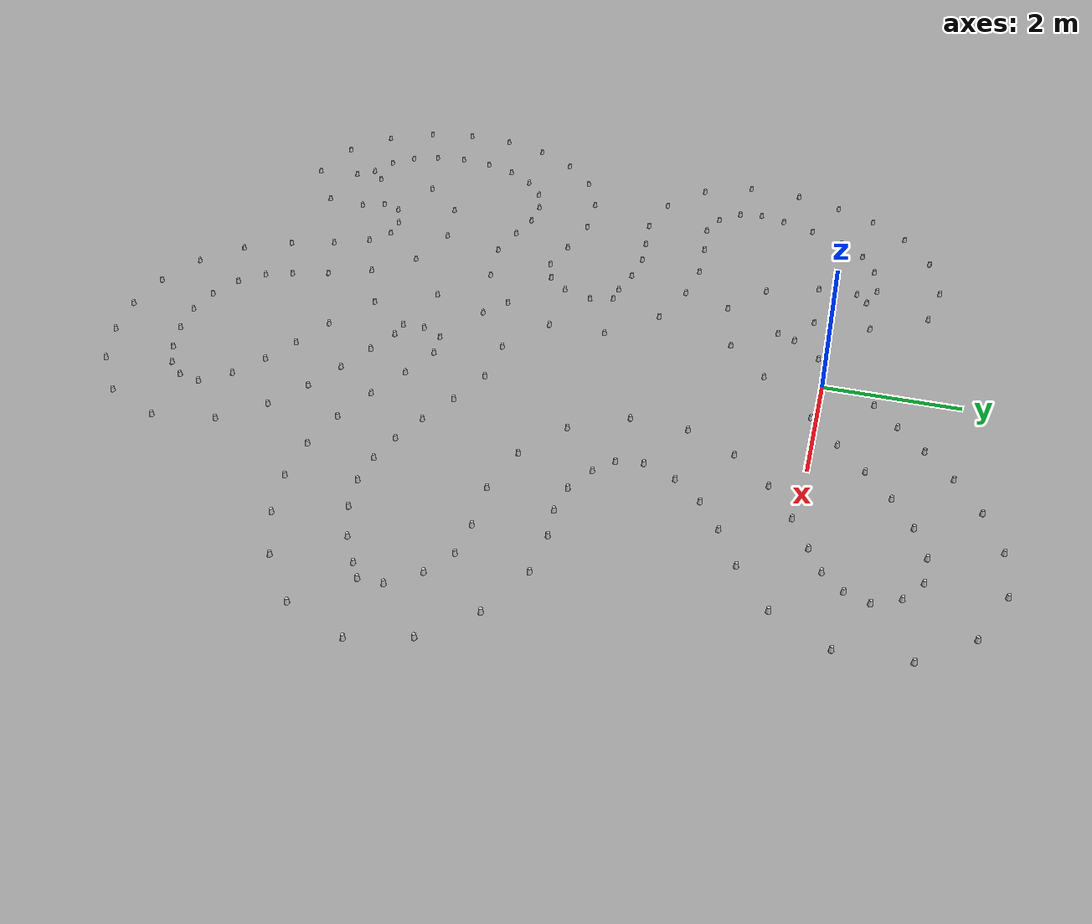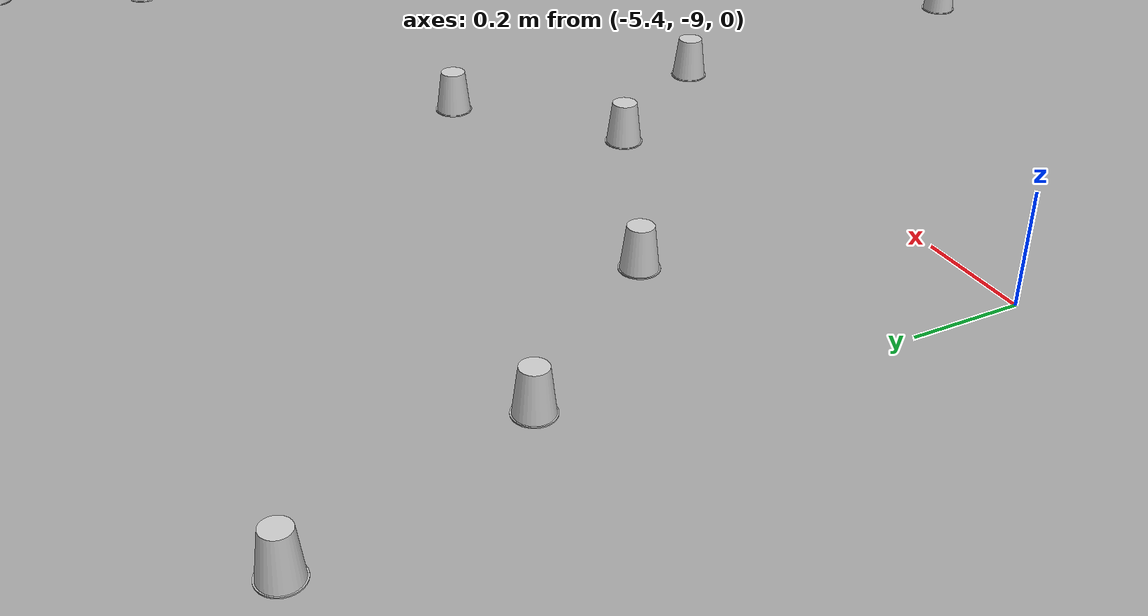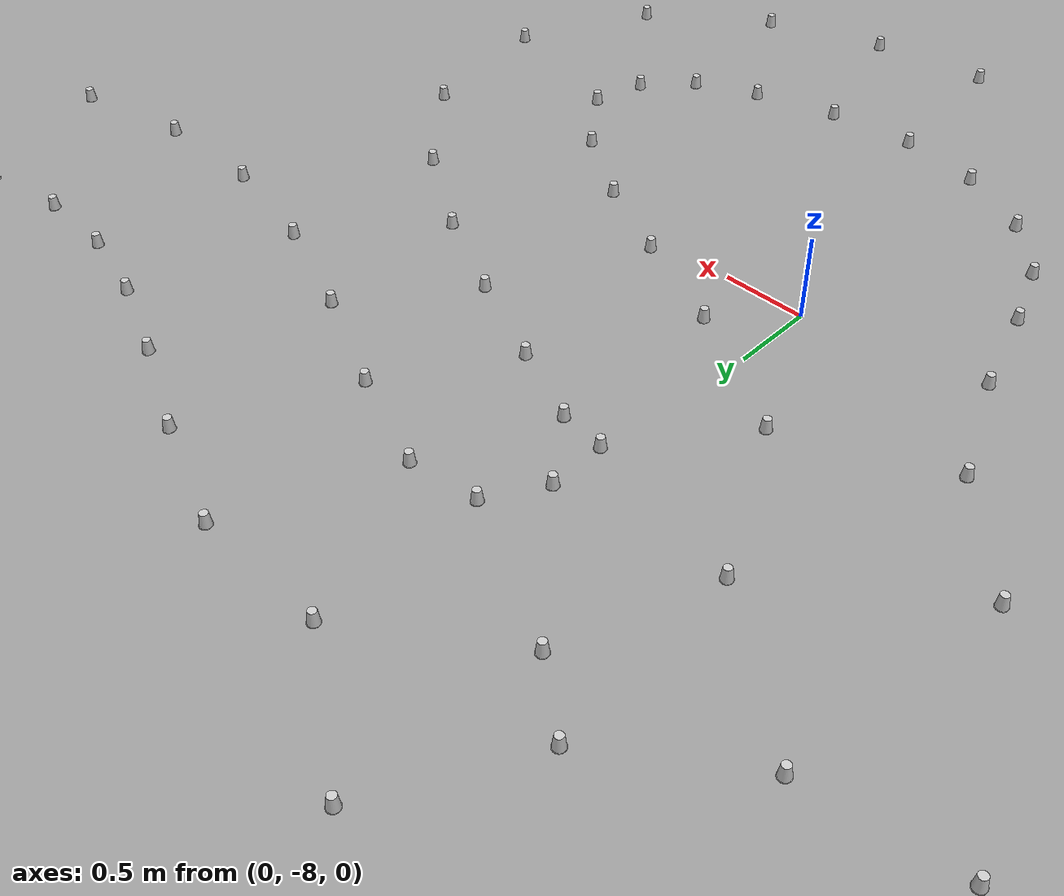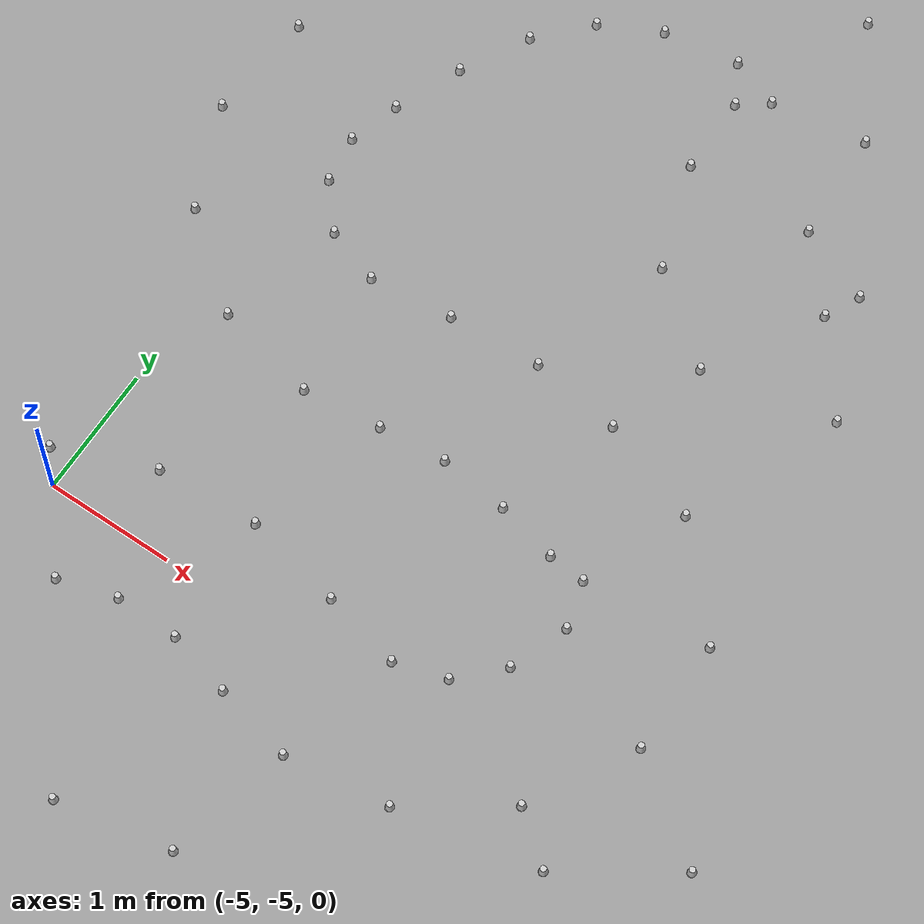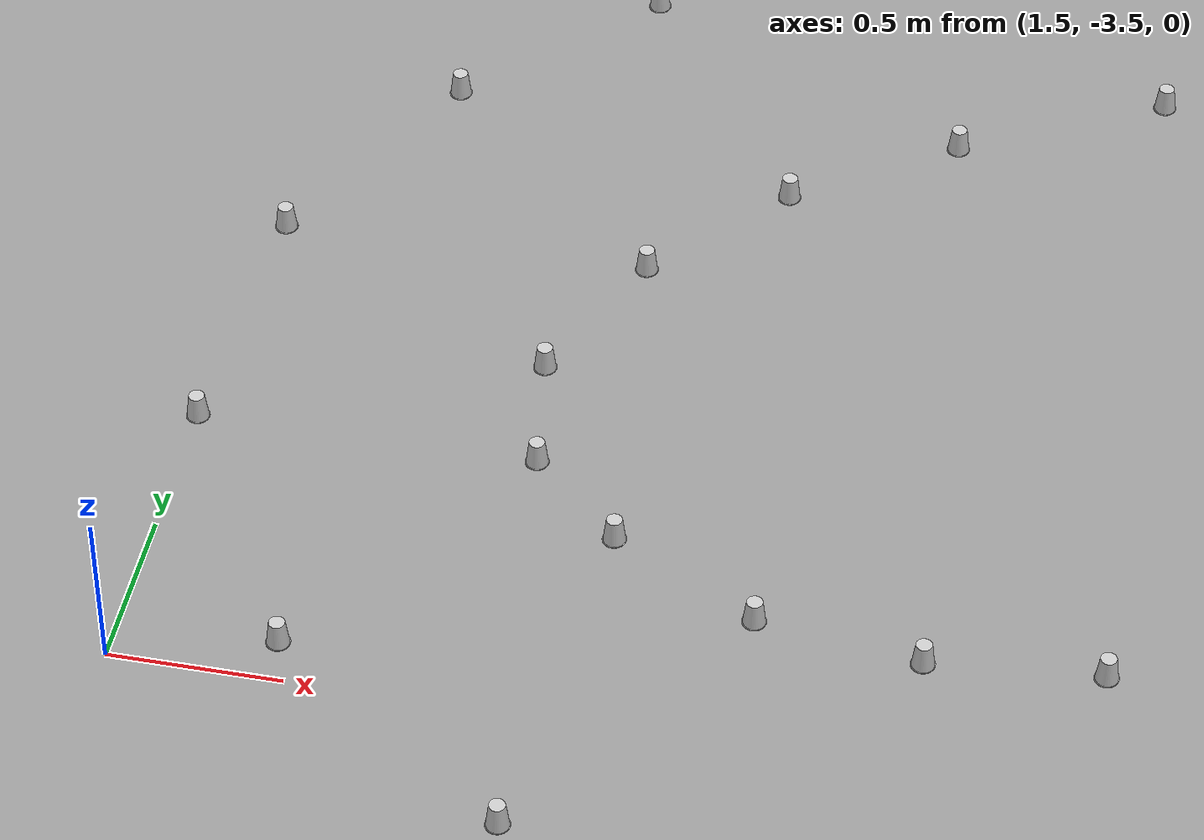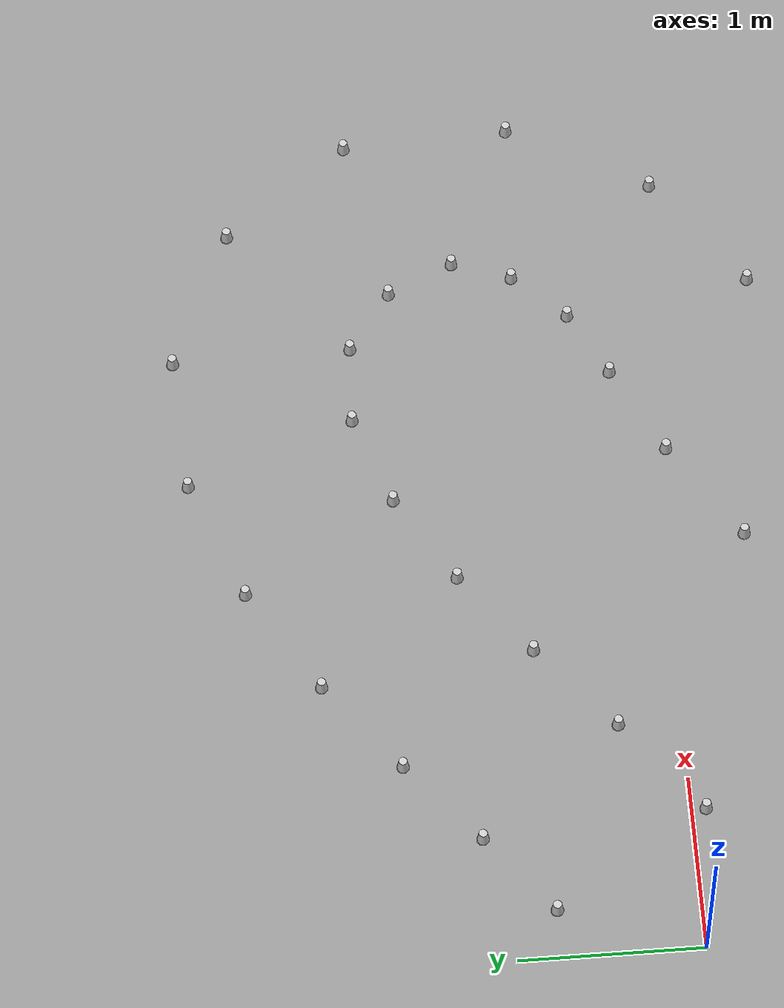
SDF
<?xml version='1.0' encoding='UTF-8'?>
<sdf version="1.4">
  <model name="some track">
    <include>
      <uri>model://cone_yellow</uri>
      <pose>0.8098690882289733 -0.07803859981334532 0 0 0 0</pose>
      <name>cone_right_0</name>
    </include>
    <include>
      <uri>model://cone_yellow</uri>
      <pose>1.3415215292681073 0.3438486451548427 0 0 0 0</pose>
      <name>cone_right_1</name>
    </include>
    <include>
      <uri>model://cone_yellow</uri>
      <pose>1.8267544602839314 0.7617399776052545 0 0 0 0</pose>
      <name>cone_right_2</name>
    </include>
    <include>
      <uri>model://cone_yellow</uri>
      <pose>2.305570124237677 1.1416640141401102 0 0 0 0</pose>
      <name>cone_right_3</name>
    </include>
    <include>
      <uri>model://cone_yellow</uri>
      <pose>2.8150628147497794 1.4576853009401303 0 0 0 0</pose>
      <name>cone_right_4</name>
    </include>
    <include>
      <uri>model://cone_yellow</uri>
      <pose>3.3435135392471373 1.6504635832721637 0 0 0 0</pose>
      <name>cone_right_5</name>
    </include>
    <include>
      <uri>model://cone_yellow</uri>
      <pose>3.8073756724978147 1.6321110786827409 0 0 0 0</pose>
      <name>cone_right_6</name>
    </include>
    <include>
      <uri>model://cone_yellow</uri>
      <pose>4.1551541010185264 1.390933326838955 0 0 0 0</pose>
      <name>cone_right_7</name>
    </include>
    <include>
      <uri>model://cone_yellow</uri>
      <pose>4.328915797131 1.020990457557811 0 0 0 0</pose>
      <name>cone_right_8</name>
    </include>
    <include>
      <uri>model://cone_yellow</uri>
      <pose>4.211983686424044 0.688838794514703 0 0 0 0</pose>
      <name>cone_right_9</name>
    </include>
    <include>
      <uri>model://cone_yellow</uri>
      <pose>3.9386792983090992 0.39459705114491544 0 0 0 0</pose>
      <name>cone_right_10</name>
    </include>
    <include>
      <uri>model://cone_yellow</uri>
      <pose>3.5543874433810814 0.18915335700011193 0 0 0 0</pose>
      <name>cone_right_11</name>
    </include>
    <include>
      <uri>model://cone_yellow</uri>
      <pose>3.0362030059148784 -0.07948637281879595 0 0 0 0</pose>
      <name>cone_right_12</name>
    </include>
    <include>
      <uri>model://cone_yellow</uri>
      <pose>2.467281581476098 -0.4581541921111271 0 0 0 0</pose>
      <name>cone_right_13</name>
    </include>
    <include>
      <uri>model://cone_yellow</uri>
      <pose>1.9337229331608634 -1.0021185895554272 0 0 0 0</pose>
      <name>cone_right_14</name>
    </include>
    <include>
      <uri>model://cone_yellow</uri>
      <pose>1.5521015692715037 -1.7146195895169554 0 0 0 0</pose>
      <name>cone_right_15</name>
    </include>
    <include>
      <uri>model://cone_yellow</uri>
      <pose>1.5029725684296487 -2.5539274115643216 0 0 0 0</pose>
      <name>cone_right_16</name>
    </include>
    <include>
      <uri>model://cone_yellow</uri>
      <pose>1.949978777702134 -3.3642804812432674 0 0 0 0</pose>
      <name>cone_right_17</name>
    </include>
    <include>
      <uri>model://cone_yellow</uri>
      <pose>2.6764394816414825 -3.8772240344979263 0 0 0 0</pose>
      <name>cone_right_18</name>
    </include>
    <include>
      <uri>model://cone_yellow</uri>
      <pose>3.4899070281730378 -4.079181973574025 0 0 0 0</pose>
      <name>cone_right_19</name>
    </include>
    <include>
      <uri>model://cone_yellow</uri>
      <pose>4.249732103402675 -4.050490470408479 0 0 0 0</pose>
      <name>cone_right_20</name>
    </include>
    <include>
      <uri>model://cone_yellow</uri>
      <pose>4.813013286542176 -4.0969213508915665 0 0 0 0</pose>
      <name>cone_right_21</name>
    </include>
    <include>
      <uri>model://cone_yellow</uri>
      <pose>5.239198919273268 -4.36642090616303 0 0 0 0</pose>
      <name>cone_right_22</name>
    </include>
    <include>
      <uri>model://cone_yellow</uri>
      <pose>5.556465235841797 -4.776001794660984 0 0 0 0</pose>
      <name>cone_right_23</name>
    </include>
    <include>
      <uri>model://cone_yellow</uri>
      <pose>5.558905619224324 -5.120245781708283 0 0 0 0</pose>
      <name>cone_right_24</name>
    </include>
    <include>
      <uri>model://cone_yellow</uri>
      <pose>5.309823811428494 -5.2709203576351955 0 0 0 0</pose>
      <name>cone_right_25</name>
    </include>
    <include>
      <uri>model://cone_yellow</uri>
      <pose>4.8743906952245375 -5.520700184293771 0 0 0 0</pose>
      <name>cone_right_26</name>
    </include>
    <include>
      <uri>model://cone_yellow</uri>
      <pose>4.328952221916327 -5.721816164223976 0 0 0 0</pose>
      <name>cone_right_27</name>
    </include>
    <include>
      <uri>model://cone_yellow</uri>
      <pose>3.7970046650067033 -5.798619878860976 0 0 0 0</pose>
      <name>cone_right_28</name>
    </include>
    <include>
      <uri>model://cone_yellow</uri>
      <pose>3.293229378976521 -5.760246882709888 0 0 0 0</pose>
      <name>cone_right_29</name>
    </include>
    <include>
      <uri>model://cone_yellow</uri>
      <pose>2.8080875991336542 -5.622113105073369 0 0 0 0</pose>
      <name>cone_right_30</name>
    </include>
    <include>
      <uri>model://cone_yellow</uri>
      <pose>2.296375277540966 -5.402027493534508 0 0 0 0</pose>
      <name>cone_right_31</name>
    </include>
    <include>
      <uri>model://cone_yellow</uri>
      <pose>1.7242305451537667 -5.121662652345177 0 0 0 0</pose>
      <name>cone_right_32</name>
    </include>
    <include>
      <uri>model://cone_yellow</uri>
      <pose>1.0659133657441882 -4.850713762877937 0 0 0 0</pose>
      <name>cone_right_33</name>
    </include>
    <include>
      <uri>model://cone_yellow</uri>
      <pose>0.2571893983041287 -4.81976137873046 0 0 0 0</pose>
      <name>cone_right_34</name>
    </include>
    <include>
      <uri>model://cone_yellow</uri>
      <pose>-0.5739027485295984 -5.381301302848325 0 0 0 0</pose>
      <name>cone_right_35</name>
    </include>
    <include>
      <uri>model://cone_yellow</uri>
      <pose>-0.8817289214769661 -6.2456318522586605 0 0 0 0</pose>
      <name>cone_right_36</name>
    </include>
    <include>
      <uri>model://cone_yellow</uri>
      <pose>-0.41343380713385847 -7.14636089690079 0 0 0 0</pose>
      <name>cone_right_37</name>
    </include>
    <include>
      <uri>model://cone_yellow</uri>
      <pose>0.3598814433244003 -7.613705418653802 0 0 0 0</pose>
      <name>cone_right_38</name>
    </include>
    <include>
      <uri>model://cone_yellow</uri>
      <pose>0.9824567261662451 -7.904258987365732 0 0 0 0</pose>
      <name>cone_right_39</name>
    </include>
    <include>
      <uri>model://cone_yellow</uri>
      <pose>1.5071762451060284 -8.175676638756077 0 0 0 0</pose>
      <name>cone_right_40</name>
    </include>
    <include>
      <uri>model://cone_yellow</uri>
      <pose>1.9755036294444184 -8.499331656678242 0 0 0 0</pose>
      <name>cone_right_41</name>
    </include>
    <include>
      <uri>model://cone_yellow</uri>
      <pose>2.287134134981156 -8.896565407871128 0 0 0 0</pose>
      <name>cone_right_42</name>
    </include>
    <include>
      <uri>model://cone_yellow</uri>
      <pose>2.2090761276970095 -9.231949476047959 0 0 0 0</pose>
      <name>cone_right_43</name>
    </include>
    <include>
      <uri>model://cone_yellow</uri>
      <pose>1.954044118870015 -9.497516738254518 0 0 0 0</pose>
      <name>cone_right_44</name>
    </include>
    <include>
      <uri>model://cone_yellow</uri>
      <pose>1.5772574909472392 -9.66655090982913 0 0 0 0</pose>
      <name>cone_right_45</name>
    </include>
    <include>
      <uri>model://cone_yellow</uri>
      <pose>1.0711287542989585 -9.806191841544173 0 0 0 0</pose>
      <name>cone_right_46</name>
    </include>
    <include>
      <uri>model://cone_yellow</uri>
      <pose>0.5368746709471298 -9.851348005477721 0 0 0 0</pose>
      <name>cone_right_47</name>
    </include>
    <include>
      <uri>model://cone_yellow</uri>
      <pose>0.03638539023565115 -9.75647911072634 0 0 0 0</pose>
      <name>cone_right_48</name>
    </include>
    <include>
      <uri>model://cone_yellow</uri>
      <pose>-0.413070078914334 -9.519639170044206 0 0 0 0</pose>
      <name>cone_right_49</name>
    </include>
    <include>
      <uri>model://cone_yellow</uri>
      <pose>-0.7176144586249011 -9.176730529086747 0 0 0 0</pose>
      <name>cone_right_50</name>
    </include>
    <include>
      <uri>model://cone_yellow</uri>
      <pose>-0.8686450762857645 -8.761339824164496 0 0 0 0</pose>
      <name>cone_right_51</name>
    </include>
    <include>
      <uri>model://cone_yellow</uri>
      <pose>-1.0335388920076678 -8.19582295900106 0 0 0 0</pose>
      <name>cone_right_52</name>
    </include>
    <include>
      <uri>model://cone_yellow</uri>
      <pose>-1.3107936159710296 -7.538707248308487 0 0 0 0</pose>
      <name>cone_right_53</name>
    </include>
    <include>
      <uri>model://cone_yellow</uri>
      <pose>-1.8503725567668887 -6.951141915166937 0 0 0 0</pose>
      <name>cone_right_54</name>
    </include>
    <include>
      <uri>model://cone_yellow</uri>
      <pose>-2.716023924234447 -6.678517424009797 0 0 0 0</pose>
      <name>cone_right_55</name>
    </include>
    <include>
      <uri>model://cone_yellow</uri>
      <pose>-3.6040319114786783 -6.844984780423694 0 0 0 0</pose>
      <name>cone_right_56</name>
    </include>
    <include>
      <uri>model://cone_yellow</uri>
      <pose>-4.261409645004354 -7.48556968757443 0 0 0 0</pose>
      <name>cone_right_57</name>
    </include>
    <include>
      <uri>model://cone_yellow</uri>
      <pose>-4.360816222393459 -8.511610005038966 0 0 0 0</pose>
      <name>cone_right_58</name>
    </include>
    <include>
      <uri>model://cone_yellow</uri>
      <pose>-4.430096177653246 -9.009641114962493 0 0 0 0</pose>
      <name>cone_right_59</name>
    </include>
    <include>
      <uri>model://cone_yellow</uri>
      <pose>-4.631537949072799 -8.739093541064934 0 0 0 0</pose>
      <name>cone_right_60</name>
    </include>
    <include>
      <uri>model://cone_yellow</uri>
      <pose>-5.039289726006803 -8.532348285058289 0 0 0 0</pose>
      <name>cone_right_61</name>
    </include>
    <include>
      <uri>model://cone_yellow</uri>
      <pose>-5.306836609638551 -8.20386679625892 0 0 0 0</pose>
      <name>cone_right_62</name>
    </include>
    <include>
      <uri>model://cone_yellow</uri>
      <pose>-5.461081154035311 -7.77970545749225 0 0 0 0</pose>
      <name>cone_right_63</name>
    </include>
    <include>
      <uri>model://cone_yellow</uri>
      <pose>-5.515188517755773 -7.28149414431213 0 0 0 0</pose>
      <name>cone_right_64</name>
    </include>
    <include>
      <uri>model://cone_yellow</uri>
      <pose>-5.446220754693788 -6.76360286824978 0 0 0 0</pose>
      <name>cone_right_65</name>
    </include>
    <include>
      <uri>model://cone_yellow</uri>
      <pose>-5.253790636925346 -6.2678736815210945 0 0 0 0</pose>
      <name>cone_right_66</name>
    </include>
    <include>
      <uri>model://cone_yellow</uri>
      <pose>-4.948305519744356 -5.8434074944532455 0 0 0 0</pose>
      <name>cone_right_67</name>
    </include>
    <include>
      <uri>model://cone_yellow</uri>
      <pose>-4.556281118904588 -5.551478170141122 0 0 0 0</pose>
      <name>cone_right_68</name>
    </include>
    <include>
      <uri>model://cone_yellow</uri>
      <pose>-4.107441730325199 -5.422016723781993 0 0 0 0</pose>
      <name>cone_right_69</name>
    </include>
    <include>
      <uri>model://cone_yellow</uri>
      <pose>-3.612316645348303 -5.428740097846819 0 0 0 0</pose>
      <name>cone_right_70</name>
    </include>
    <include>
      <uri>model://cone_yellow</uri>
      <pose>-3.1093505100495613 -5.562880484178045 0 0 0 0</pose>
      <name>cone_right_71</name>
    </include>
    <include>
      <uri>model://cone_yellow</uri>
      <pose>-2.497963748008794 -5.704415155235024 0 0 0 0</pose>
      <name>cone_right_72</name>
    </include>
    <include>
      <uri>model://cone_yellow</uri>
      <pose>-1.6875112996367523 -5.5944808837642235 0 0 0 0</pose>
      <name>cone_right_73</name>
    </include>
    <include>
      <uri>model://cone_yellow</uri>
      <pose>-0.950834935839674 -5.083067359066648 0 0 0 0</pose>
      <name>cone_right_74</name>
    </include>
    <include>
      <uri>model://cone_yellow</uri>
      <pose>-0.5083974197809866 -4.279372053145138 0 0 0 0</pose>
      <name>cone_right_75</name>
    </include>
    <include>
      <uri>model://cone_yellow</uri>
      <pose>-0.513939341145148 -3.399768949793431 0 0 0 0</pose>
      <name>cone_right_76</name>
    </include>
    <include>
      <uri>model://cone_yellow</uri>
      <pose>-1.186836681790102 -2.6715722351113853 0 0 0 0</pose>
      <name>cone_right_77</name>
    </include>
    <include>
      <uri>model://cone_yellow</uri>
      <pose>-1.9851358598239195 -2.3910777193064385 0 0 0 0</pose>
      <name>cone_right_78</name>
    </include>
    <include>
      <uri>model://cone_yellow</uri>
      <pose>-2.691366486261051 -2.2915555262297977 0 0 0 0</pose>
      <name>cone_right_79</name>
    </include>
    <include>
      <uri>model://cone_yellow</uri>
      <pose>-3.417761634313481 -2.3338018764288373 0 0 0 0</pose>
      <name>cone_right_80</name>
    </include>
    <include>
      <uri>model://cone_yellow</uri>
      <pose>-4.068303692661902 -2.4044972422292763 0 0 0 0</pose>
      <name>cone_right_81</name>
    </include>
    <include>
      <uri>model://cone_yellow</uri>
      <pose>-4.500696408201614 -2.2555761980378444 0 0 0 0</pose>
      <name>cone_right_82</name>
    </include>
    <include>
      <uri>model://cone_yellow</uri>
      <pose>-4.7813900844439114 -1.9259926457225975 0 0 0 0</pose>
      <name>cone_right_83</name>
    </include>
    <include>
      <uri>model://cone_yellow</uri>
      <pose>-4.836583437729273 -1.5541431733736635 0 0 0 0</pose>
      <name>cone_right_84</name>
    </include>
    <include>
      <uri>model://cone_yellow</uri>
      <pose>-4.720135678746224 -1.153965167572303 0 0 0 0</pose>
      <name>cone_right_85</name>
    </include>
    <include>
      <uri>model://cone_yellow</uri>
      <pose>-4.506572597778538 -0.6308508713439743 0 0 0 0</pose>
      <name>cone_right_86</name>
    </include>
    <include>
      <uri>model://cone_yellow</uri>
      <pose>-4.230181594894683 -0.11243442807754349 0 0 0 0</pose>
      <name>cone_right_87</name>
    </include>
    <include>
      <uri>model://cone_yellow</uri>
      <pose>-3.884552174260103 0.26786100358603915 0 0 0 0</pose>
      <name>cone_right_88</name>
    </include>
    <include>
      <uri>model://cone_yellow</uri>
      <pose>-3.428172707960127 0.4977302684813053 0 0 0 0</pose>
      <name>cone_right_89</name>
    </include>
    <include>
      <uri>model://cone_yellow</uri>
      <pose>-2.8364474831801494 0.5858235315228677 0 0 0 0</pose>
      <name>cone_right_90</name>
    </include>
    <include>
      <uri>model://cone_yellow</uri>
      <pose>-2.4503265232495455 0.4471446427668726 0 0 0 0</pose>
      <name>cone_right_91</name>
    </include>
    <include>
      <uri>model://cone_yellow</uri>
      <pose>-2.6664431257632293 0.2809053821542568 0 0 0 0</pose>
      <name>cone_right_92</name>
    </include>
    <include>
      <uri>model://cone_yellow</uri>
      <pose>-2.6605734754668227 -0.3302439919151127 0 0 0 0</pose>
      <name>cone_right_93</name>
    </include>
    <include>
      <uri>model://cone_yellow</uri>
      <pose>-2.3783534341269568 -1.1457827857688092 0 0 0 0</pose>
      <name>cone_right_94</name>
    </include>
    <include>
      <uri>model://cone_yellow</uri>
      <pose>-1.713786363290616 -1.6658377522695944 0 0 0 0</pose>
      <name>cone_right_95</name>
    </include>
    <include>
      <uri>model://cone_yellow</uri>
      <pose>-0.6926045037211084 -1.4592042909242122 0 0 0 0</pose>
      <name>cone_right_96</name>
    </include>
    <include>
      <uri>model://cone_yellow</uri>
      <pose>-0.0018753009360534811 -0.8575163070426868 0 0 0 0</pose>
      <name>cone_right_97</name>
    </include>
    <include>
      <uri>model://cone_blue</uri>
      <pose>0.2738314994084038 0.7661555149324459 0 0 0 0</pose>
      <name>cone_left_0</name>
    </include>
    <include>
      <uri>model://cone_blue</uri>
      <pose>0.7164693805260893 1.124431639687126 0 0 0 0</pose>
      <name>cone_left_1</name>
    </include>
    <include>
      <uri>model://cone_blue</uri>
      <pose>1.173795452203578 1.5191332266949997 0 0 0 0</pose>
      <name>cone_left_2</name>
    </include>
    <include>
      <uri>model://cone_blue</uri>
      <pose>1.6834864174966886 1.9246147544854988 0 0 0 0</pose>
      <name>cone_left_3</name>
    </include>
    <include>
      <uri>model://cone_blue</uri>
      <pose>2.283599179662126 2.304766409559262 0 0 0 0</pose>
      <name>cone_left_4</name>
    </include>
    <include>
      <uri>model://cone_blue</uri>
      <pose>2.98520895251726 2.5840683300083467 0 0 0 0</pose>
      <name>cone_left_5</name>
    </include>
    <include>
      <uri>model://cone_blue</uri>
      <pose>3.7840842260414465 2.6318397961466187 0 0 0 0</pose>
      <name>cone_left_6</name>
    </include>
    <include>
      <uri>model://cone_blue</uri>
      <pose>4.6051962603828365 2.2839406363245542 0 0 0 0</pose>
      <name>cone_left_7</name>
    </include>
    <include>
      <uri>model://cone_blue</uri>
      <pose>5.157129918067543 1.5814022435520987 0 0 0 0</pose>
      <name>cone_left_8</name>
    </include>
    <include>
      <uri>model://cone_blue</uri>
      <pose>5.210751868059828 0.6392190469140733 0 0 0 0</pose>
      <name>cone_left_9</name>
    </include>
    <include>
      <uri>model://cone_blue</uri>
      <pose>4.776264504100936 -0.15170966036304906 0 0 0 0</pose>
      <name>cone_left_10</name>
    </include>
    <include>
      <uri>model://cone_blue</uri>
      <pose>4.1067014282641985 -0.6444828119024447 0 0 0 0</pose>
      <name>cone_left_11</name>
    </include>
    <include>
      <uri>model://cone_blue</uri>
      <pose>3.5004317961264415 -0.965201694092346 0 0 0 0</pose>
      <name>cone_left_12</name>
    </include>
    <include>
      <uri>model://cone_blue</uri>
      <pose>3.0249578595326216 -1.2882127255248998 0 0 0 0</pose>
      <name>cone_left_13</name>
    </include>
    <include>
      <uri>model://cone_blue</uri>
      <pose>2.6585291248476297 -1.6910714068749633 0 0 0 0</pose>
      <name>cone_left_14</name>
    </include>
    <include>
      <uri>model://cone_blue</uri>
      <pose>2.4459268644306373 -2.163034956931685 0 0 0 0</pose>
      <name>cone_left_15</name>
    </include>
    <include>
      <uri>model://cone_blue</uri>
      <pose>2.502951753530855 -2.54747532939442 0 0 0 0</pose>
      <name>cone_left_16</name>
    </include>
    <include>
      <uri>model://cone_blue</uri>
      <pose>2.7780370340330296 -2.8036384170684174 0 0 0 0</pose>
      <name>cone_left_17</name>
    </include>
    <include>
      <uri>model://cone_blue</uri>
      <pose>3.2151598172716938 -3.034739375896672 0 0 0 0</pose>
      <name>cone_left_18</name>
    </include>
    <include>
      <uri>model://cone_blue</uri>
      <pose>3.6925663450295465 -3.099932668600438 0 0 0 0</pose>
      <name>cone_left_19</name>
    </include>
    <include>
      <uri>model://cone_blue</uri>
      <pose>4.189117570500718 -3.0523292217111173 0 0 0 0</pose>
      <name>cone_left_20</name>
    </include>
    <include>
      <uri>model://cone_blue</uri>
      <pose>4.887155689590941 -3.0996736865322285 0 0 0 0</pose>
      <name>cone_left_21</name>
    </include>
    <include>
      <uri>model://cone_blue</uri>
      <pose>5.70304935390235 -3.480507380871531 0 0 0 0</pose>
      <name>cone_left_22</name>
    </include>
    <include>
      <uri>model://cone_blue</uri>
      <pose>6.30636525075627 -4.114450611734619 0 0 0 0</pose>
      <name>cone_left_23</name>
    </include>
    <include>
      <uri>model://cone_blue</uri>
      <pose>6.538697193888884 -4.920224607288317 0 0 0 0</pose>
      <name>cone_left_24</name>
    </include>
    <include>
      <uri>model://cone_blue</uri>
      <pose>6.163248010928834 -5.792137333286607 0 0 0 0</pose>
      <name>cone_left_25</name>
    </include>
    <include>
      <uri>model://cone_blue</uri>
      <pose>5.44401616758627 -6.342604571212757 0 0 0 0</pose>
      <name>cone_left_26</name>
    </include>
    <include>
      <uri>model://cone_blue</uri>
      <pose>4.696091049264404 -6.6519823222051615 0 0 0 0</pose>
      <name>cone_left_27</name>
    </include>
    <include>
      <uri>model://cone_blue</uri>
      <pose>3.96044102156545 -6.785173758461478 0 0 0 0</pose>
      <name>cone_left_28</name>
    </include>
    <include>
      <uri>model://cone_blue</uri>
      <pose>3.2404386906671045 -6.758852482147333 0 0 0 0</pose>
      <name>cone_left_29</name>
    </include>
    <include>
      <uri>model://cone_blue</uri>
      <pose>2.554072024792908 -6.589313233274529 0 0 0 0</pose>
      <name>cone_left_30</name>
    </include>
    <include>
      <uri>model://cone_blue</uri>
      <pose>1.9094140523423941 -6.324123481050352 0 0 0 0</pose>
      <name>cone_left_31</name>
    </include>
    <include>
      <uri>model://cone_blue</uri>
      <pose>1.2853435341406623 -6.020204911542808 0 0 0 0</pose>
      <name>cone_left_32</name>
    </include>
    <include>
      <uri>model://cone_blue</uri>
      <pose>0.6867006967796493 -5.776023306596573 0 0 0 0</pose>
      <name>cone_left_33</name>
    </include>
    <include>
      <uri>model://cone_blue</uri>
      <pose>0.26755799006841174 -5.819707623438058 0 0 0 0</pose>
      <name>cone_left_34</name>
    </include>
    <include>
      <uri>model://cone_blue</uri>
      <pose>0.0797039361249314 -6.1381356980596635 0 0 0 0</pose>
      <name>cone_left_35</name>
    </include>
    <include>
      <uri>model://cone_blue</uri>
      <pose>0.08925062204531548 -6.484794403803131 0 0 0 0</pose>
      <name>cone_left_36</name>
    </include>
    <include>
      <uri>model://cone_blue</uri>
      <pose>0.36889707575409036 -6.5234978383720605 0 0 0 0</pose>
      <name>cone_left_37</name>
    </include>
    <include>
      <uri>model://cone_blue</uri>
      <pose>0.8395891252208493 -6.736277051247359 0 0 0 0</pose>
      <name>cone_left_38</name>
    </include>
    <include>
      <uri>model://cone_blue</uri>
      <pose>1.403961745649802 -6.997432918844228 0 0 0 0</pose>
      <name>cone_left_39</name>
    </include>
    <include>
      <uri>model://cone_blue</uri>
      <pose>1.9659656075134533 -7.2871315802802625 0 0 0 0</pose>
      <name>cone_left_40</name>
    </include>
    <include>
      <uri>model://cone_blue</uri>
      <pose>2.538687186540528 -7.672999834093288 0 0 0 0</pose>
      <name>cone_left_41</name>
    </include>
    <include>
      <uri>model://cone_blue</uri>
      <pose>3.051066868751186 -8.251269523586524 0 0 0 0</pose>
      <name>cone_left_42</name>
    </include>
    <include>
      <uri>model://cone_blue</uri>
      <pose>3.207146088179274 -9.169849927072693 0 0 0 0</pose>
      <name>cone_left_43</name>
    </include>
    <include>
      <uri>model://cone_blue</uri>
      <pose>2.8163236632243045 -10.003949347185024 0 0 0 0</pose>
      <name>cone_left_44</name>
    </include>
    <include>
      <uri>model://cone_blue</uri>
      <pose>2.1078039911913398 -10.514206742746438 0 0 0 0</pose>
      <name>cone_left_45</name>
    </include>
    <include>
      <uri>model://cone_blue</uri>
      <pose>1.3674405295739709 -10.761283110394103 0 0 0 0</pose>
      <name>cone_left_46</name>
    </include>
    <include>
      <uri>model://cone_blue</uri>
      <pose>0.6392820211298221 -10.846090552385494 0 0 0 0</pose>
      <name>cone_left_47</name>
    </include>
    <include>
      <uri>model://cone_blue</uri>
      <pose>-0.11794767820616037 -10.74449798908107 0 0 0 0</pose>
      <name>cone_left_48</name>
    </include>
    <include>
      <uri>model://cone_blue</uri>
      <pose>-0.8427197485277567 -10.422634829724293 0 0 0 0</pose>
      <name>cone_left_49</name>
    </include>
    <include>
      <uri>model://cone_blue</uri>
      <pose>-1.4227811166913138 -9.885772124729378 0 0 0 0</pose>
      <name>cone_left_50</name>
    </include>
    <include>
      <uri>model://cone_blue</uri>
      <pose>-1.7803973562504345 -9.172080350505917 0 0 0 0</pose>
      <name>cone_left_51</name>
    </include>
    <include>
      <uri>model://cone_blue</uri>
      <pose>-1.9914631079804335 -8.48284420639045 0 0 0 0</pose>
      <name>cone_left_52</name>
    </include>
    <include>
      <uri>model://cone_blue</uri>
      <pose>-2.2304061559165915 -7.931533897576166 0 0 0 0</pose>
      <name>cone_left_53</name>
    </include>
    <include>
      <uri>model://cone_blue</uri>
      <pose>-2.5550973551009335 -7.660622682075412 0 0 0 0</pose>
      <name>cone_left_54</name>
    </include>
    <include>
      <uri>model://cone_blue</uri>
      <pose>-2.93460374388904 -7.654336496604593 0 0 0 0</pose>
      <name>cone_left_55</name>
    </include>
    <include>
      <uri>model://cone_blue</uri>
      <pose>-3.3625149810622545 -7.815381386107282 0 0 0 0</pose>
      <name>cone_left_56</name>
    </include>
    <include>
      <uri>model://cone_blue</uri>
      <pose>-3.4914318064358736 -8.123640316982657 0 0 0 0</pose>
      <name>cone_left_57</name>
    </include>
    <include>
      <uri>model://cone_blue</uri>
      <pose>-3.3610635784655902 -8.489369255068771 0 0 0 0</pose>
      <name>cone_left_58</name>
    </include>
    <include>
      <uri>model://cone_blue</uri>
      <pose>-3.4381682719422706 -9.136444229560828 0 0 0 0</pose>
      <name>cone_left_59</name>
    </include>
    <include>
      <uri>model://cone_blue</uri>
      <pose>-4.377764374276868 -9.706357193196707 0 0 0 0</pose>
      <name>cone_left_60</name>
    </include>
    <include>
      <uri>model://cone_blue</uri>
      <pose>-5.336873868607025 -9.487043879513868 0 0 0 0</pose>
      <name>cone_left_61</name>
    </include>
    <include>
      <uri>model://cone_blue</uri>
      <pose>-5.998328918983142 -8.926250618141223 0 0 0 0</pose>
      <name>cone_left_62</name>
    </include>
    <include>
      <uri>model://cone_blue</uri>
      <pose>-6.371003076330416 -8.194485031876983 0 0 0 0</pose>
      <name>cone_left_63</name>
    </include>
    <include>
      <uri>model://cone_blue</uri>
      <pose>-6.504376077756204 -7.4281501061425095 0 0 0 0</pose>
      <name>cone_left_64</name>
    </include>
    <include>
      <uri>model://cone_blue</uri>
      <pose>-6.440954823421056 -6.661113197973728 0 0 0 0</pose>
      <name>cone_left_65</name>
    </include>
    <include>
      <uri>model://cone_blue</uri>
      <pose>-6.195473281254389 -5.931371382317271 0 0 0 0</pose>
      <name>cone_left_66</name>
    </include>
    <include>
      <uri>model://cone_blue</uri>
      <pose>-5.7770574831848185 -5.283791391134571 0 0 0 0</pose>
      <name>cone_left_67</name>
    </include>
    <include>
      <uri>model://cone_blue</uri>
      <pose>-5.187973089535914 -4.776258682357236 0 0 0 0</pose>
      <name>cone_left_68</name>
    </include>
    <include>
      <uri>model://cone_blue</uri>
      <pose>-4.443331185330532 -4.480115309611581 0 0 0 0</pose>
      <name>cone_left_69</name>
    </include>
    <include>
      <uri>model://cone_blue</uri>
      <pose>-3.6464058859909945 -4.429321304911443 0 0 0 0</pose>
      <name>cone_left_70</name>
    </include>
    <include>
      <uri>model://cone_blue</uri>
      <pose>-2.8834585296391535 -4.588728127928642 0 0 0 0</pose>
      <name>cone_left_71</name>
    </include>
    <include>
      <uri>model://cone_blue</uri>
      <pose>-2.272430467595715 -4.730179691178149 0 0 0 0</pose>
      <name>cone_left_72</name>
    </include>
    <include>
      <uri>model://cone_blue</uri>
      <pose>-1.8729189111122133 -4.611819183275717 0 0 0 0</pose>
      <name>cone_left_73</name>
    </include>
    <include>
      <uri>model://cone_blue</uri>
      <pose>-1.5726582176244563 -4.299909771967856 0 0 0 0</pose>
      <name>cone_left_74</name>
    </include>
    <include>
      <uri>model://cone_blue</uri>
      <pose>-1.4094076221034024 -3.845574156295787 0 0 0 0</pose>
      <name>cone_left_75</name>
    </include>
    <include>
      <uri>model://cone_blue</uri>
      <pose>-1.51027682536121 -3.485276946764524 0 0 0 0</pose>
      <name>cone_left_76</name>
    </include>
    <include>
      <uri>model://cone_blue</uri>
      <pose>-1.8024258096673325 -3.4596395073917097 0 0 0 0</pose>
      <name>cone_left_77</name>
    </include>
    <include>
      <uri>model://cone_blue</uri>
      <pose>-2.279865246376702 -3.3466584792122775 0 0 0 0</pose>
      <name>cone_left_78</name>
    </include>
    <include>
      <uri>model://cone_blue</uri>
      <pose>-2.820989660130144 -3.2831188539079155 0 0 0 0</pose>
      <name>cone_left_79</name>
    </include>
    <include>
      <uri>model://cone_blue</uri>
      <pose>-3.345749292589867 -3.3312056174682825 0 0 0 0</pose>
      <name>cone_left_80</name>
    </include>
    <include>
      <uri>model://cone_blue</uri>
      <pose>-3.959757163240922 -3.3985886117475217 0 0 0 0</pose>
      <name>cone_left_81</name>
    </include>
    <include>
      <uri>model://cone_blue</uri>
      <pose>-4.756475239920283 -3.2223115233697746 0 0 0 0</pose>
      <name>cone_left_82</name>
    </include>
    <include>
      <uri>model://cone_blue</uri>
      <pose>-5.45265673801824 -2.667208592528333 0 0 0 0</pose>
      <name>cone_left_83</name>
    </include>
    <include>
      <uri>model://cone_blue</uri>
      <pose>-5.785694190118931 -1.8690856755837328 0 0 0 0</pose>
      <name>cone_left_84</name>
    </include>
    <include>
      <uri>model://cone_blue</uri>
      <pose>-5.708664368651079 -1.0029319618359818 0 0 0 0</pose>
      <name>cone_left_85</name>
    </include>
    <include>
      <uri>model://cone_blue</uri>
      <pose>-5.43993454772051 -0.2719142886437441 0 0 0 0</pose>
      <name>cone_left_86</name>
    </include>
    <include>
      <uri>model://cone_blue</uri>
      <pose>-5.115320337159195 0.3528927760943141 0 0 0 0</pose>
      <name>cone_left_87</name>
    </include>
    <include>
      <uri>model://cone_blue</uri>
      <pose>-4.641341940521954 0.9215193621200162 0 0 0 0</pose>
      <name>cone_left_88</name>
    </include>
    <include>
      <uri>model://cone_blue</uri>
      <pose>-3.926430659920886 1.364759110739664 0 0 0 0</pose>
      <name>cone_left_89</name>
    </include>
    <include>
      <uri>model://cone_blue</uri>
      <pose>-3.0278803900462408 1.5673292330696282 0 0 0 0</pose>
      <name>cone_left_90</name>
    </include>
    <include>
      <uri>model://cone_blue</uri>
      <pose>-2.2175800875700977 1.41968209535084 0 0 0 0</pose>
      <name>cone_left_91</name>
    </include>
    <include>
      <uri>model://cone_blue</uri>
      <pose>-1.7054572173211184 0.5575027136231108 0 0 0 0</pose>
      <name>cone_left_92</name>
    </include>
    <include>
      <uri>model://cone_blue</uri>
      <pose>-1.6611595509701047 -0.29601231766350683 0 0 0 0</pose>
      <name>cone_left_93</name>
    </include>
    <include>
      <uri>model://cone_blue</uri>
      <pose>-1.203846691817343 -0.8056275852419486 0 0 0 0</pose>
      <name>cone_left_94</name>
    </include>
    <include>
      <uri>model://cone_blue</uri>
      <pose>-1.0757667142089389 -0.5355232201784275 0 0 0 0</pose>
      <name>cone_left_95</name>
    </include>
    <include>
      <uri>model://cone_blue</uri>
      <pose>-0.6844105461595408 -0.1266636276142577 0 0 0 0</pose>
      <name>cone_left_96</name>
    </include>
  </model>
</sdf>

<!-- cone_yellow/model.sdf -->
<sdf version='1.4'>
  <model name="cone_yellow">
    <link name="link">
    <collision name="collision"><geometry><box><size> 0.05 0.05 0.01</size>
             </box></geometry></collision>
      <visual name="visual">
        <geometry>
          <mesh>
            <uri>model://cup.dae</uri>
            <scale>1 1 1</scale>
          </mesh>
        </geometry>
        <material>
            <script>
              <uri>model://cone_yellow/materials/scripts</uri>
              <uri>model://cone_yellow/materials/textures</uri>
              <name>cone_yellow/Image</name>
            </script>
        </material>
      </visual>
    </link>
  </model>
</sdf>

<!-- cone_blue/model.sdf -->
<sdf version='1.4'>
  <model name="cone_blue">
    <link name="link">
    <collision name="collision"><geometry><box><size> 0.05 0.05 0.01</size>
             </box></geometry></collision>
      <visual name="visual">
        <geometry>
          <mesh>
            <uri>model://cup.dae</uri>
            <scale>1 1 1</scale>
          </mesh>
        </geometry>
        <material>
            <script>
              <uri>model://cone_blue/materials/scripts</uri>
              <uri>model://cone_blue/materials/textures</uri>
              <name>cone_blue/Image</name>
            </script>
        </material>
      </visual>
    </link>
  </model>
</sdf>
